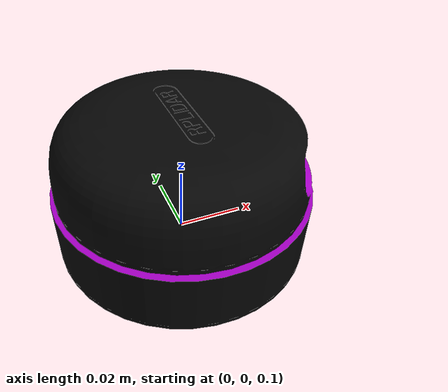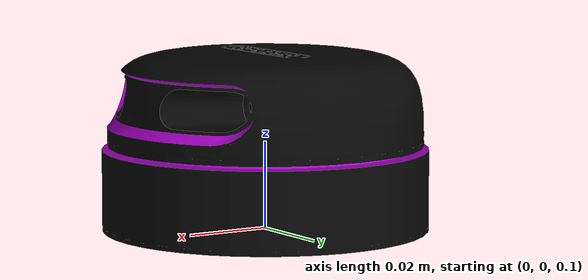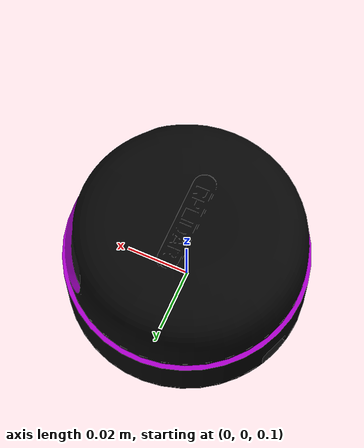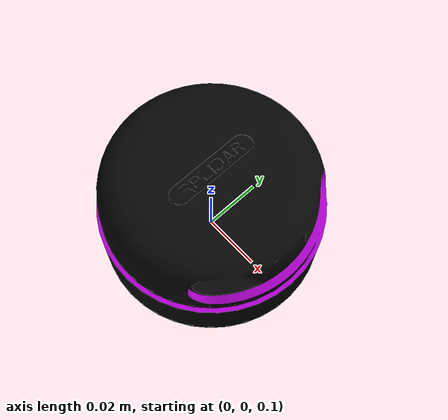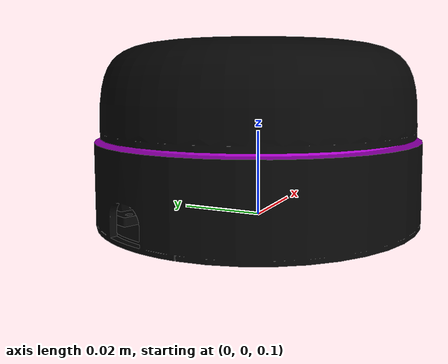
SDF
<?xml version="1.0" encoding="UTF-8"?>
<!-- |    This document was autogenerated by xacro4sdf from model.sdf.xacro            | -->
<!-- |    EDITING THIS FILE BY HAND IS NOT RECOMMENDED                                 | -->
<sdf version="1.7">
	<!--xacro_define_macro: rplidar_a2-->
	<!--xacro_define_macro: rplidar_a2_model-->
	<!--rplidar a2-->
	<model name="simple_rplidar_a2">
		<!--update_rate(10-15),samples(400)-->
		<pose>0 0 0.1 0 0 0</pose>
		<joint name="simple_rplidar_a2_joint" type="fixed">
			<pose relative_to=""/>
			<parent/>
			<child>simple_rplidar_a2</child>
		</joint>
		<link name="simple_rplidar_a2">
			<pose relative_to="simple_rplidar_a2_joint">0 0 0 0 0 0</pose>
			<inertial>
				<pose>0 0 0.02 0 0 0</pose>
				<mass>0.005</mass>
				<inertia>
					<ixx>2.6666666666666664e-06</ixx>
					<ixy>0</ixy>
					<ixz>0</ixz>
					<iyy>2.6666666666666664e-06</iyy>
					<iyz>0</iyz>
					<izz>4.000000000000001e-06</izz>
				</inertia>
			</inertial>
			<visual name="visual">
				<geometry>
					<mesh>
						<uri>model://rplidar_a2/meshes/rplidar_a2.dae</uri>
					</mesh>
				</geometry>
			</visual>
			<collision name="collision">
				<pose>0 0 0.02 0 0 0</pose>
				<geometry>
					<cylinder>
						<radius>0.04</radius>
						<length>0.04</length>
					</cylinder>
				</geometry>
			</collision>
			<sensor name="simple_rplidar_a2" type="gpu_lidar">
				<pose>0 0 0.03 0 0 0</pose>
				<always_on>true</always_on>
				<visualize>true</visualize>
				<update_rate>10.0</update_rate>
				<ray>
					<scan>
						<horizontal>
							<samples>400.0</samples>
							<resolution>0.9</resolution>
							<min_angle>-3.14159265359</min_angle>
							<max_angle>3.14159265359</max_angle>
						</horizontal>
					</scan>
					<range>
						<min>0.15</min>
						<max>12.0</max>
					</range>
				</ray>
				<noise>
					<type>gaussian</type>
					<mean>0.0</mean>
					<stddev>0.01</stddev>
				</noise>
			</sensor>
		</link>
	</model>
</sdf>
